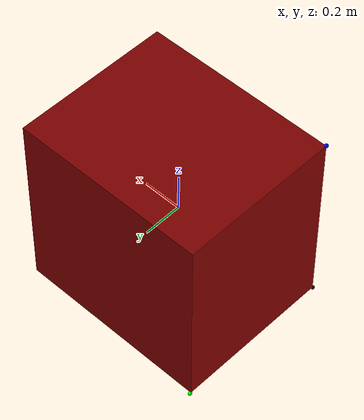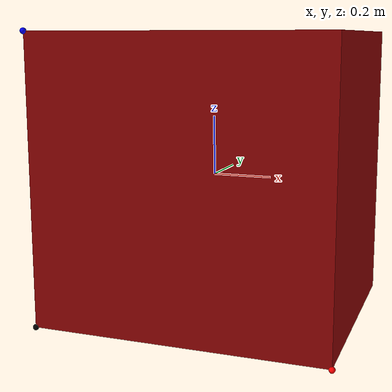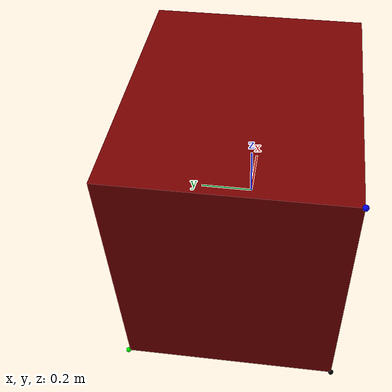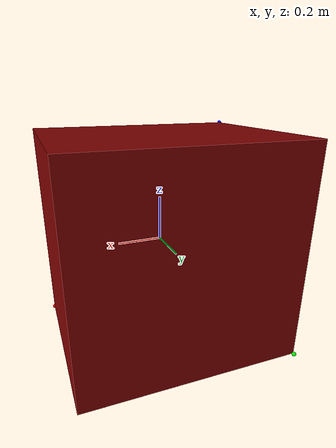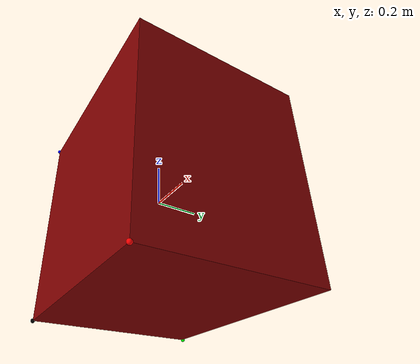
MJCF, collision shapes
<mujoco model="model">
  <compiler angle="radian" />
  <asset>
    <texture file="visuals/image3.png" name="tex-model" type="2d" />
    <texture type="2d" name="image0" file="visuals/image0.png" />
    <texture type="2d" name="image3" file="visuals/image3.png" />
    <material name="model" reflectance="0.5" texrepeat="1 1" texture="tex-model" texuniform="false" />
    <material name="boxLP" texture="image0" specular="0.5" shininess="0.25" />
    <material name="doorLP" texture="image3" specular="0.5" shininess="0.25" />
    <mesh file="visuals/model_0.obj" name="model_0_vis" scale="1 1 1" />
    <mesh file="visuals/model_1.obj" name="model_1_vis" scale="1 1 1" />
  </asset>
  <default>
    <default class="visual">
      <geom conaffinity="0" contype="0" group="1" type="mesh" />
    </default>
    <default class="collision">
      <geom group="0" rgba="0.5 0 0 0.5" />
    </default>
  </default>
  <worldbody>
    <body>
      <!-- exterior bounding box points -->
      <site rgba="0 0 0 1" size="0.01" pos="-0.5 -0.38 -0.4880809808953521" name="ext_p0" />
      <site rgba="1 0 0 1" size="0.01" pos="0.5 -0.38 -0.4880809808953521" name="ext_px" />
      <site rgba="0 1 0 1" size="0.01" pos="-0.5 0.44635753124293276 -0.4880809808953521"
        name="ext_py" />
      <site rgba="0 0 1 1" size="0.01" pos="-0.5 -0.38 0.4880809808953521" name="ext_pz" />
      <!-- interior bounding box points -->
      <body name="object">
        <geom solimp="0.998 0.998 0.001" solref="0.001 1" density="100" friction="0.95 0.3 0.1"
          type="mesh" mesh="model_0_vis" material="boxLP" class="visual" />
        <geom solimp="0.998 0.998 0.001" solref="0.001 1" density="100" friction="0.95 0.3 0.1"
          type="mesh" mesh="model_1_vis" material="doorLP" class="visual" />
        <geom class="collision" type="box" pos="0 0.03 0" size="0.5 0.41 0.4880809808953521" />
      </body>
    </body>
  </worldbody>
</mujoco>
